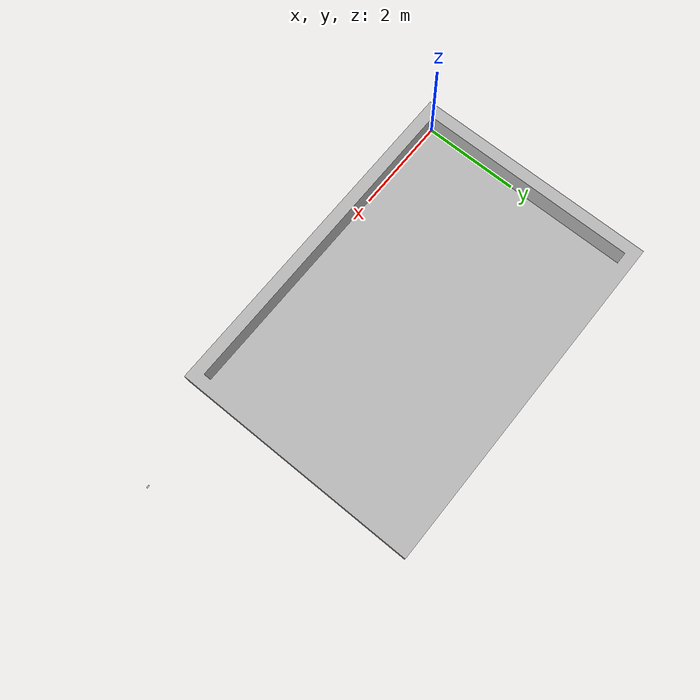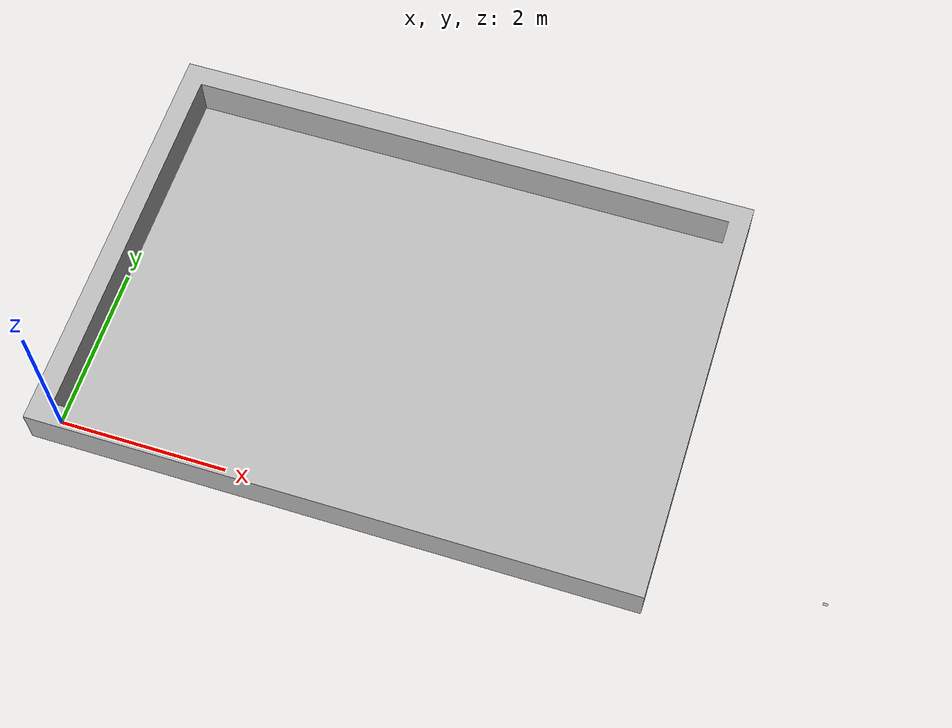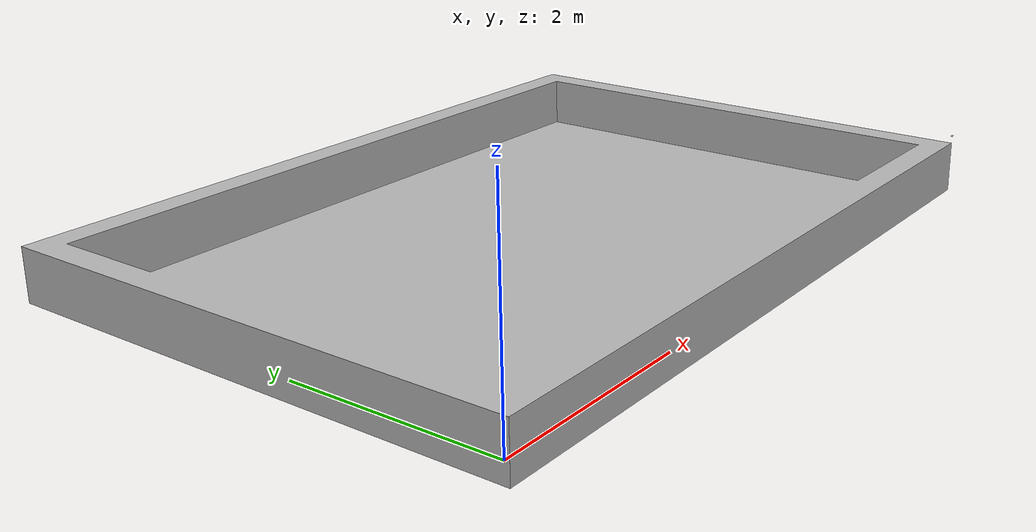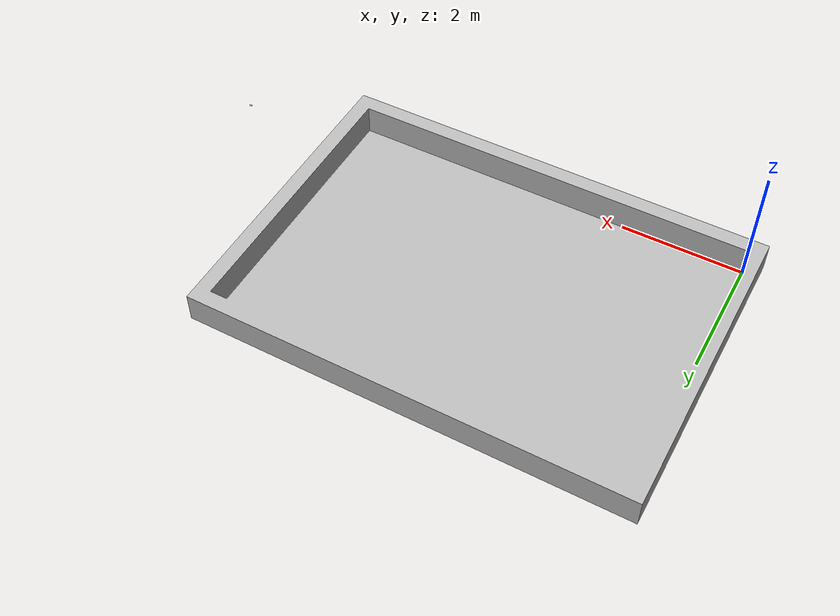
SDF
<?xml version="1.0"?>
<sdf version="1.4">
<world name="hard_loopy_track">

  <scene>
    <ambient>0.5 0.5 0.5 1.0</ambient>
    <shadows>0</shadows>
  </scene>

  <include>
    <uri>model://sun</uri>
    <pose>0.0 0.0 15.0 0 0 0</pose>
    <cast_shadows>false</cast_shadows>
    <attenuation>
      <constant>0.5</constant>
      <linear>0.01</linear>
      <quadratic>0.0</quadratic>
      <range>100</range>
    </attenuation>
  </include>

  <light type="point" name="Light 1">
         <pose>0 0 15 0 0 0</pose>
         <diffuse>.9 .9 .9 1</diffuse>
         <specular>.1 .1 .1 1</specular>
         <attenuation>
                <constant>0.4</constant>
                <linear>0.01</linear>
                <quadratic>0.00</quadratic>
                <range>50</range>
         </attenuation>
         <direction>0 0 -1</direction>
         <cast_shadows>false</cast_shadows>
  </light>

   <physics type="ode">
        <real_time_update_rate>1000.0</real_time_update_rate>
        <max_step_size>0.001</max_step_size>
   </physics>

  <include>
    <uri>model://deepracer_simulation/models/hard_loopy_track</uri>
    <pose>0 0 0 0 0 0</pose>
    <name>racetrack</name>
  </include>

</world>
</sdf>

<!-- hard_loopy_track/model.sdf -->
<sdf version='1.4'>
  <model name="hard_speed_track">
    <link name="link">
      <collision name="collision">
        <geometry>
          <plane>
            <normal>0 0 1</normal>
            <size>100 100</size>
          </plane>
        </geometry>
      </collision>
      <visual name="visual">
        <geometry>
          <mesh>
            <uri>model://deepracer_simulation/meshes/hard_loopy_track/hard_loopy_track.dae</uri>
          </mesh>
        </geometry>
      </visual>
    </link>
    <static>1</static>
  </model>
</sdf>
